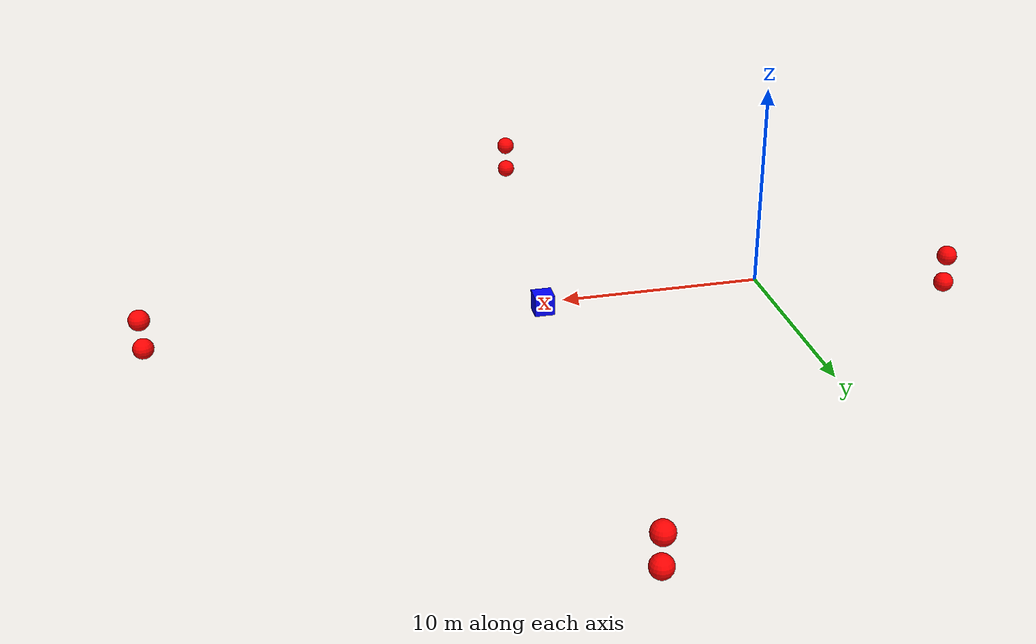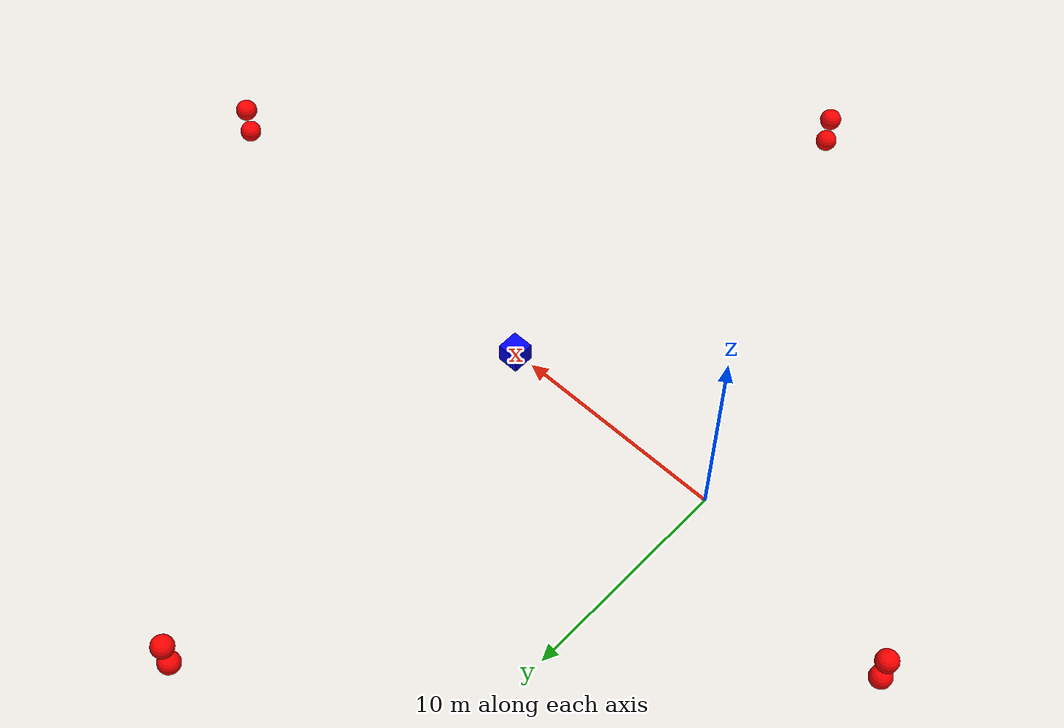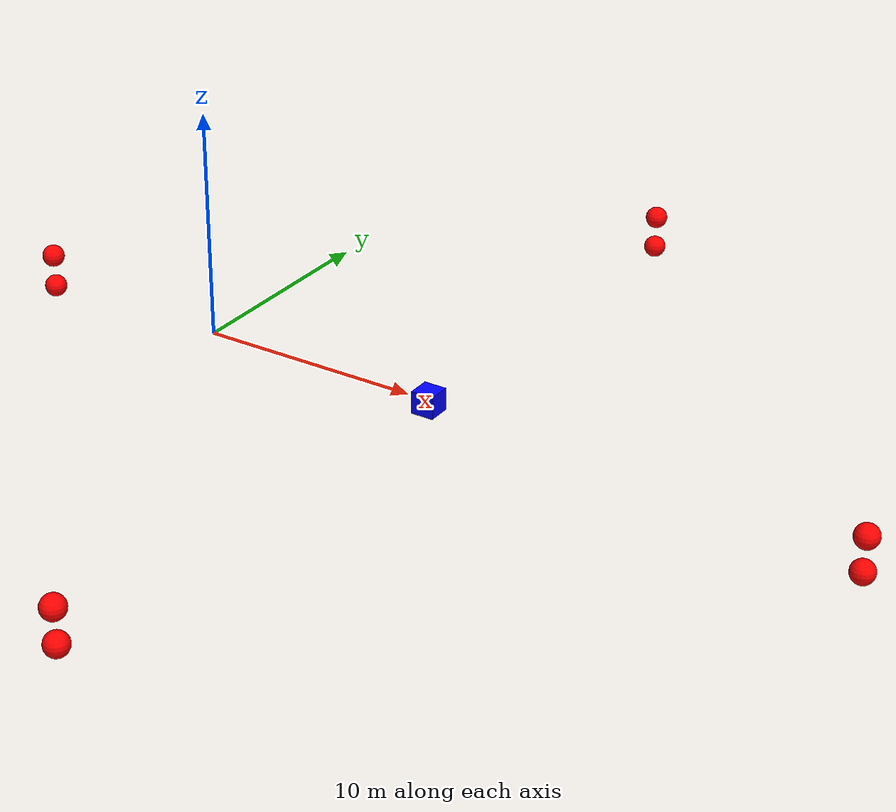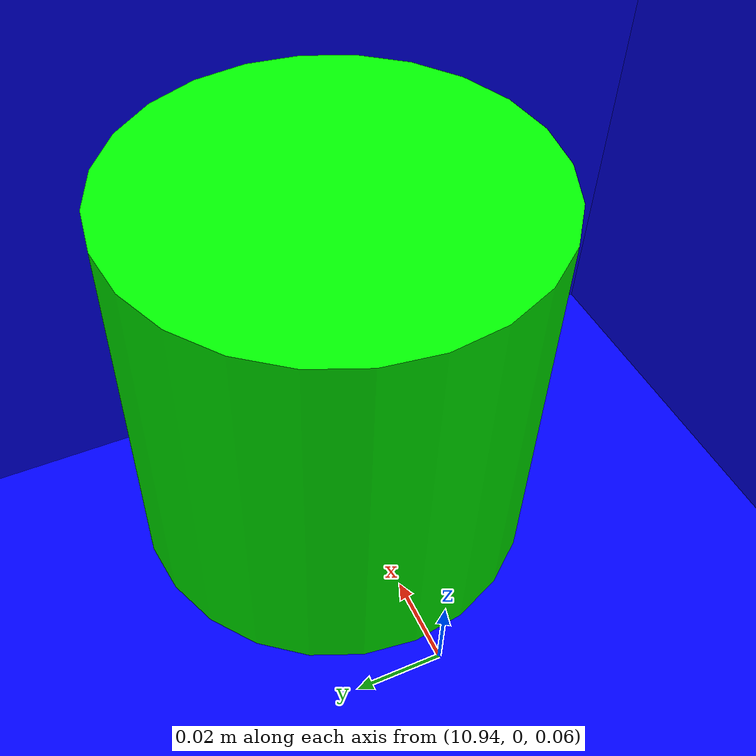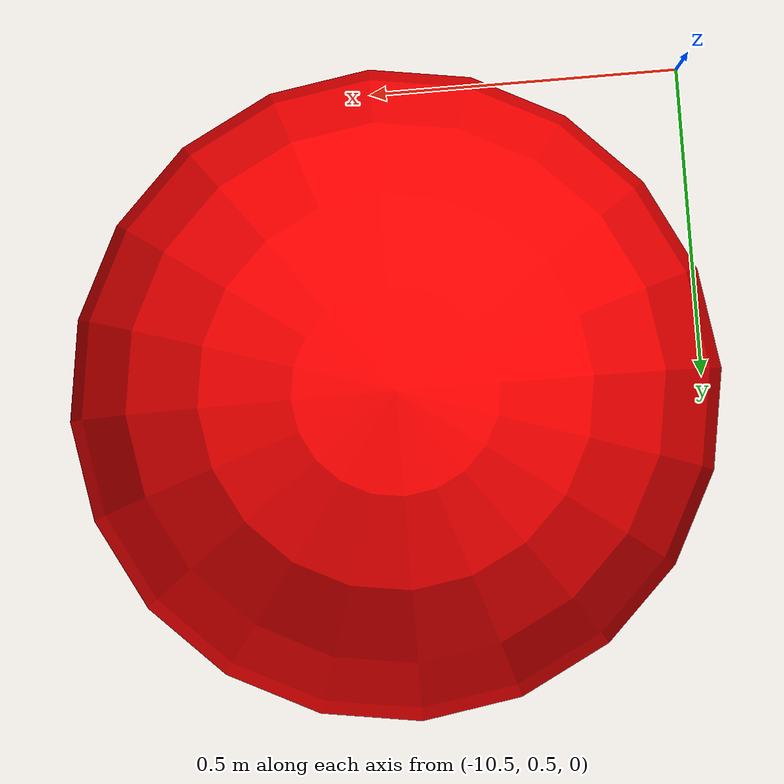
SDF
<sdf version="1.8">

    <world name="3d_world">

        <physics name="1ms" type="ode">
            <max_step_size>0.001</max_step_size>
            <real_time_factor>1.0</real_time_factor>
            <real_time_update_rate>1000.0</real_time_update_rate>
        </physics>
        <gravity>0 0 0</gravity>

        <plugin filename="gz-sim-physics-system" name="gz::sim::v8::systems::Physics">
        </plugin>
        <plugin filename="libignition-gazebo-user-commands-system.so" name="ignition::gazebo::systems::UserCommands">
        </plugin>
        <plugin filename="gz-sim-scene-broadcaster-system" name="gz::sim::systems::SceneBroadcaster">
        </plugin>
        <plugin filename="gz-sim-sensors-system" name="gz::sim::systems::Sensors">
            <render_engine>ogre2</render_engine>
        </plugin>

        <light type="directional" name="sun">
            <cast_shadows>true</cast_shadows>
            <pose>0 0 10 0 0 0</pose>
            <diffuse>0.8 0.8 0.8 1</diffuse>
            <specular>0.2 0.2 0.2 1</specular>
            <attenuation>
                <range>1000</range>
                <constant>0.9</constant>
                <linear>0.01</linear>
                <quadratic>0.001</quadratic>
            </attenuation>
            <direction>-0.5 0.1 -0.9</direction>
        </light>

        <model name="agente" canonical_link="chassis">
            <pose relative_to="world">11.0 0 0.0 0 0 0</pose>
            <link name="chassis">
                <pose relative_to="__model__">0.0 0 0.0 0 0 0</pose>
                <inertial>
                    <mass>1.14395</mass>
                    <inertia>
                        <ixx>0.095329</ixx>
                        <ixy>0</ixy>
                        <ixz>0</ixz>
                        <iyy>0.381317</iyy>
                        <iyz>0</iyz>
                        <izz>0.476646</izz>
                    </inertia>
                </inertial>
                <visual name="visual">
                    <geometry>
                        <box>
                            <size>1.0 1.0 1.0</size>
                        </box>
                    </geometry>
                    <material>
                        <ambient>0.0 0.0 1.0 1</ambient>
                        <diffuse>0.0 0.0 1.0 1</diffuse>
                        <specular>0.0 0.0 1.0 1</specular>
                    </material>
                </visual>
                <collision name="collision">
                    <geometry>
                        <box>
                            <size>1.0 1.0 1.0</size>
                        </box>
                    </geometry>
                </collision>
                <enable_gravity>false</enable_gravity>
            </link>

            <link name='lidar_link'>
                <pose relative_to='chassis'>0.0 0 0.1 0 0 0</pose>
                <inertial>
                    <mass>0.1</mass>
                    <inertia>
                        <ixx>0.000166667</ixx>
                        <iyy>0.000166667</iyy>
                        <izz>0.000166667</izz>
                    </inertia>
                </inertial>
                <collision name='collision'>
                    <geometry>
                        <cylinder>
                            <radius>0.05</radius>
                            <length>0.1</length>
                        </cylinder>
                    </geometry>
                </collision>
                <visual name='visual'>
                    <geometry>
                        <cylinder>
                            <radius>0.05</radius>
                            <length>0.1</length>
                        </cylinder>
                    </geometry>
                    <material>
                        <ambient>0.0 1.0 0.0 1</ambient>
                        <diffuse>0.0 1.0 0.0 1</diffuse>
                        <specular>0.0 1.0 0.0 1</specular>
                    </material>
                </visual>
                <sensor name="lidar" type="gpu_lidar">
                    <topic>scan</topic>
                    <update_rate>10</update_rate>
                    <lidar>
                        <scan>
                            <horizontal>
                                <samples>5000</samples>
                                <resolution>1</resolution>
                                <min_angle>-3.14159</min_angle>
                                <max_angle>3.14159</max_angle>
                            </horizontal>
                        </scan>
                        <range>
                            <min>0.1</min>
                            <max>50.0</max>
                            <resolution>0.01</resolution>
                        </range>
                    </lidar>
                    <visualize>true</visualize>
                    <always_on>true</always_on>
                    <update_rate>10</update_rate>
                    <pose_frame>lidar</pose_frame>
                </sensor>
                <enable_gravity>false</enable_gravity>
            </link>

            <joint name="lidar_joint" type="fixed">
                <parent>chassis</parent>
                <child>lidar_link</child>
            </joint>

            <plugin filename="ignition-gazebo-joint-state-publisher-system" name="ignition::gazebo::systems::JointStatePublisher">
            </plugin>

            <plugin filename="ignition-gazebo-odometry-publisher-system" name="ignition::gazebo::systems::OdometryPublisher">
                <dimensions>3</dimensions>
            </plugin>

            <plugin filename="ignition-gazebo-velocity-control-system" name="ignition::gazebo::systems::VelocityControl">
                <initial_linear>0.0 0 0</initial_linear>
                <initial_angular>0 0 0.0</initial_angular>
            </plugin>

            <plugin filename="libignition-gazebo-pose-publisher-system.so" name="ignition::gazebo::systems::PosePublisher">
                <topic>/agente/pose</topic>
                <frame_id>agente</frame_id>
                <update_rate>30</update_rate>
            </plugin>
        </model>

        <model name="obstacle_1" canonical_link="obstacle">
            <static>false</static>
            <pose relative_to="world">11.0 20.0 0.75 0 0 0</pose>
            <link name="obstacle">
                <pose relative_to="__model__">0.0 0 0.0 0 0 0</pose>
                <inertial>
                    <mass>1.0</mass>
                    <inertia>
                        <ixx>0.1</ixx>
                        <ixy>0</ixy>
                        <ixz>0</ixz>
                        <iyy>0.1</iyy>
                        <iyz>0</iyz>
                        <izz>0.1</izz>
                    </inertia>
                </inertial>
                <visual name="visual">
                    <geometry>
                        <sphere>
                            <radius>0.5</radius>
                        </sphere>
                    </geometry>
                    <material>
                        <ambient>1.0 0.0 0.0 1</ambient>
                        <diffuse>1.0 0.0 0.0 1</diffuse>
                        <specular>1.0 0.0 0.0 1</specular>
                    </material>
                </visual>
                <collision name="collision">
                    <geometry>
                        <sphere>
                            <radius>0.5</radius>
                        </sphere>
                    </geometry>
                </collision>
                <enable_gravity>false</enable_gravity>
            </link>

            <plugin filename="ignition-gazebo-velocity-control-system" name="ignition::gazebo::systems::VelocityControl">
                <initial_linear>0.0 -4.0 0</initial_linear>
                <initial_angular>0 0 0.0</initial_angular>
            </plugin>

            <plugin filename="ignition-gazebo-odometry-publisher-system" name="ignition::gazebo::systems::OdometryPublisher">
                <dimensions>3</dimensions>
            </plugin>
        </model>

        <model name="obstacle_5" canonical_link="obstacle">
            <static>false</static>
            <pose relative_to="world">11.0 20.0 -0.75 0 0 0</pose>
            <link name="obstacle">
                <pose relative_to="__model__">0.0 0 0.0 0 0 0</pose>
                <inertial>
                    <mass>1.0</mass>
                    <inertia>
                        <ixx>0.1</ixx>
                        <ixy>0</ixy>
                        <ixz>0</ixz>
                        <iyy>0.1</iyy>
                        <iyz>0</iyz>
                        <izz>0.1</izz>
                    </inertia>
                </inertial>
                <visual name="visual">
                    <geometry>
                        <sphere>
                            <radius>0.5</radius>
                        </sphere>
                    </geometry>
                    <material>
                        <ambient>1.0 0.0 0.0 1</ambient>
                        <diffuse>1.0 0.0 0.0 1</diffuse>
                        <specular>1.0 0.0 0.0 1</specular>
                    </material>
                </visual>
                <collision name="collision">
                    <geometry>
                        <sphere>
                            <radius>0.5</radius>
                        </sphere>
                    </geometry>
                </collision>
                <enable_gravity>false</enable_gravity>
            </link>

            <plugin filename="ignition-gazebo-velocity-control-system" name="ignition::gazebo::systems::VelocityControl">
                <initial_linear>0.0 -4.0 0</initial_linear>
                <initial_angular>0 0 0.0</initial_angular>
            </plugin>

            <plugin filename="ignition-gazebo-odometry-publisher-system" name="ignition::gazebo::systems::OdometryPublisher">
                <dimensions>3</dimensions>
            </plugin>
        </model>

        <model name="obstacle_2" canonical_link="obstacle">
            <static>false</static>
            <pose relative_to="world">9.0 -20.0 0.75 0 0 0</pose>
            <link name="obstacle">
                <pose relative_to="__model__">0.0 0 0.0 0 0 0</pose>
                <inertial>
                    <mass>1.0</mass>
                    <inertia>
                        <ixx>0.1</ixx>
                        <ixy>0</ixy>
                        <ixz>0</ixz>
                        <iyy>0.1</iyy>
                        <iyz>0</iyz>
                        <izz>0.1</izz>
                    </inertia>
                </inertial>
                <visual name="visual">
                    <geometry>
                        <sphere>
                            <radius>0.5</radius>
                        </sphere>
                    </geometry>
                    <material>
                        <ambient>1.0 0.0 0.0 1</ambient>
                        <diffuse>1.0 0.0 0.0 1</diffuse>
                        <specular>1.0 0.0 0.0 1</specular>
                    </material>
                </visual>
                <collision name="collision">
                    <geometry>
                        <sphere>
                            <radius>0.5</radius>
                        </sphere>
                    </geometry>
                </collision>
                <enable_gravity>false</enable_gravity>
            </link>

            <plugin filename="ignition-gazebo-velocity-control-system" name="ignition::gazebo::systems::VelocityControl">
                <initial_linear>0.0 4.0 0</initial_linear>
                <initial_angular>0 0 0.0</initial_angular>
            </plugin>

            <plugin filename="ignition-gazebo-odometry-publisher-system" name="ignition::gazebo::systems::OdometryPublisher">
                <dimensions>3</dimensions>
            </plugin>
        </model>

        <model name="obstacle_6" canonical_link="obstacle">
            <static>false</static>
            <pose relative_to="world">9.0 -20.0 -0.75 0 0 0</pose>
            <link name="obstacle">
                <pose relative_to="__model__">0.0 0 0.0 0 0 0</pose>
                <inertial>
                    <mass>1.0</mass>
                    <inertia>
                        <ixx>0.1</ixx>
                        <ixy>0</ixy>
                        <ixz>0</ixz>
                        <iyy>0.1</iyy>
                        <iyz>0</iyz>
                        <izz>0.1</izz>
                    </inertia>
                </inertial>
                <visual name="visual">
                    <geometry>
                        <sphere>
                            <radius>0.5</radius>
                        </sphere>
                    </geometry>
                    <material>
                        <ambient>1.0 0.0 0.0 1</ambient>
                        <diffuse>1.0 0.0 0.0 1</diffuse>
                        <specular>1.0 0.0 0.0 1</specular>
                    </material>
                </visual>
                <collision name="collision">
                    <geometry>
                        <sphere>
                            <radius>0.5</radius>
                        </sphere>
                    </geometry>
                </collision>
                <enable_gravity>false</enable_gravity>
            </link>

            <plugin filename="ignition-gazebo-velocity-control-system" name="ignition::gazebo::systems::VelocityControl">
                <initial_linear>0.0 4.0 0</initial_linear>
                <initial_angular>0 0 0.0</initial_angular>
            </plugin>

            <plugin filename="ignition-gazebo-odometry-publisher-system" name="ignition::gazebo::systems::OdometryPublisher">
                <dimensions>3</dimensions>
            </plugin>
        </model>

        <model name="obstacle_3" canonical_link="obstacle">
            <static>false</static>
            <pose relative_to="world">30.0 -1.0 0.75 0 0 0</pose>
            <link name="obstacle">
                <pose relative_to="__model__">0.0 0 0.0 0 0 0</pose>
                <inertial>
                    <mass>1.0</mass>
                    <inertia>
                        <ixx>0.1</ixx>
                        <ixy>0</ixy>
                        <ixz>0</ixz>
                        <iyy>0.1</iyy>
                        <iyz>0</iyz>
                        <izz>0.1</izz>
                    </inertia>
                </inertial>
                <visual name="visual">
                    <geometry>
                        <sphere>
                            <radius>0.5</radius>
                        </sphere>
                    </geometry>
                    <material>
                        <ambient>1.0 0.0 0.0 1</ambient>
                        <diffuse>1.0 0.0 0.0 1</diffuse>
                        <specular>1.0 0.0 0.0 1</specular>
                    </material>
                </visual>
                <collision name="collision">
                    <geometry>
                        <sphere>
                            <radius>0.5</radius>
                        </sphere>
                    </geometry>
                </collision>
                <enable_gravity>false</enable_gravity>
            </link>

            <plugin filename="ignition-gazebo-velocity-control-system" name="ignition::gazebo::systems::VelocityControl">
                <initial_linear>-4.0 0.0 0</initial_linear>
                <initial_angular>0 0 0.0</initial_angular>
            </plugin>

            <plugin filename="ignition-gazebo-odometry-publisher-system" name="ignition::gazebo::systems::OdometryPublisher">
                <dimensions>3</dimensions>
            </plugin>
        </model>

        <model name="obstacle_7" canonical_link="obstacle">
            <static>false</static>
            <pose relative_to="world">30.0 -1.0 -0.75 0 0 0</pose>
            <link name="obstacle">
                <pose relative_to="__model__">0.0 0 0.0 0 0 0</pose>
                <inertial>
                    <mass>1.0</mass>
                    <inertia>
                        <ixx>0.1</ixx>
                        <ixy>0</ixy>
                        <ixz>0</ixz>
                        <iyy>0.1</iyy>
                        <iyz>0</iyz>
                        <izz>0.1</izz>
                    </inertia>
                </inertial>
                <visual name="visual">
                    <geometry>
                        <sphere>
                            <radius>0.5</radius>
                        </sphere>
                    </geometry>
                    <material>
                        <ambient>1.0 0.0 0.0 1</ambient>
                        <diffuse>1.0 0.0 0.0 1</diffuse>
                        <specular>1.0 0.0 0.0 1</specular>
                    </material>
                </visual>
                <collision name="collision">
                    <geometry>
                        <sphere>
                            <radius>0.5</radius>
                        </sphere>
                    </geometry>
                </collision>
                <enable_gravity>false</enable_gravity>
            </link>

            <plugin filename="ignition-gazebo-velocity-control-system" name="ignition::gazebo::systems::VelocityControl">
                <initial_linear>-4.0 0.0 0</initial_linear>
                <initial_angular>0 0 0.0</initial_angular>
            </plugin>

            <plugin filename="ignition-gazebo-odometry-publisher-system" name="ignition::gazebo::systems::OdometryPublisher">
                <dimensions>3</dimensions>
            </plugin>
        </model>

        <model name="obstacle_4" canonical_link="obstacle">
            <static>false</static>
            <pose relative_to="world">-10.0 1.0 0.75 0 0 0</pose>
            <link name="obstacle">
                <pose relative_to="__model__">0.0 0 0.0 0 0 0</pose>
                <inertial>
                    <mass>1.0</mass>
                    <inertia>
                        <ixx>0.1</ixx>
                        <ixy>0</ixy>
                        <ixz>0</ixz>
                        <iyy>0.1</iyy>
                        <iyz>0</iyz>
                        <izz>0.1</izz>
                    </inertia>
                </inertial>
                <visual name="visual">
                    <geometry>
                        <sphere>
                            <radius>0.5</radius>
                        </sphere>
                    </geometry>
                    <material>
                        <ambient>1.0 0.0 0.0 1</ambient>
                        <diffuse>1.0 0.0 0.0 1</diffuse>
                        <specular>1.0 0.0 0.0 1</specular>
                    </material>
                </visual>
                <collision name="collision">
                    <geometry>
                        <sphere>
                            <radius>0.5</radius>
                        </sphere>
                    </geometry>
                </collision>
                <enable_gravity>false</enable_gravity>
            </link>

            <plugin filename="ignition-gazebo-velocity-control-system" name="ignition::gazebo::systems::VelocityControl">
                <initial_linear>4.0 0.0 0</initial_linear>
                <initial_angular>0 0 0.0</initial_angular>
            </plugin>

            <plugin filename="ignition-gazebo-odometry-publisher-system" name="ignition::gazebo::systems::OdometryPublisher">
                <dimensions>3</dimensions>
            </plugin>
        </model>

        <model name="obstacle_8" canonical_link="obstacle">
            <static>false</static>
            <pose relative_to="world">-10.0 1.0 -0.75 0 0 0</pose>
            <link name="obstacle">
                <pose relative_to="__model__">0.0 0 0.0 0 0 0</pose>
                <inertial>
                    <mass>1.0</mass>
                    <inertia>
                        <ixx>0.1</ixx>
                        <ixy>0</ixy>
                        <ixz>0</ixz>
                        <iyy>0.1</iyy>
                        <iyz>0</iyz>
                        <izz>0.1</izz>
                    </inertia>
                </inertial>
                <visual name="visual">
                    <geometry>
                        <sphere>
                            <radius>0.5</radius>
                        </sphere>
                    </geometry>
                    <material>
                        <ambient>1.0 0.0 0.0 1</ambient>
                        <diffuse>1.0 0.0 0.0 1</diffuse>
                        <specular>1.0 0.0 0.0 1</specular>
                    </material>
                </visual>
                <collision name="collision">
                    <geometry>
                        <sphere>
                            <radius>0.5</radius>
                        </sphere>
                    </geometry>
                </collision>
                <enable_gravity>false</enable_gravity>
            </link>

            <plugin filename="ignition-gazebo-velocity-control-system" name="ignition::gazebo::systems::VelocityControl">
                <initial_linear>4.0 0.0 0</initial_linear>
                <initial_angular>0 0 0.0</initial_angular>
            </plugin>

            <plugin filename="ignition-gazebo-odometry-publisher-system" name="ignition::gazebo::systems::OdometryPublisher">
                <dimensions>3</dimensions>
            </plugin>
        </model>

    </world>
</sdf>
